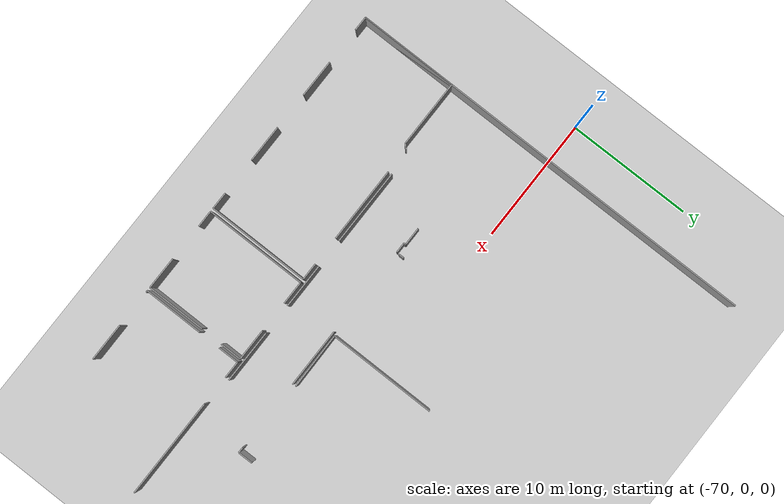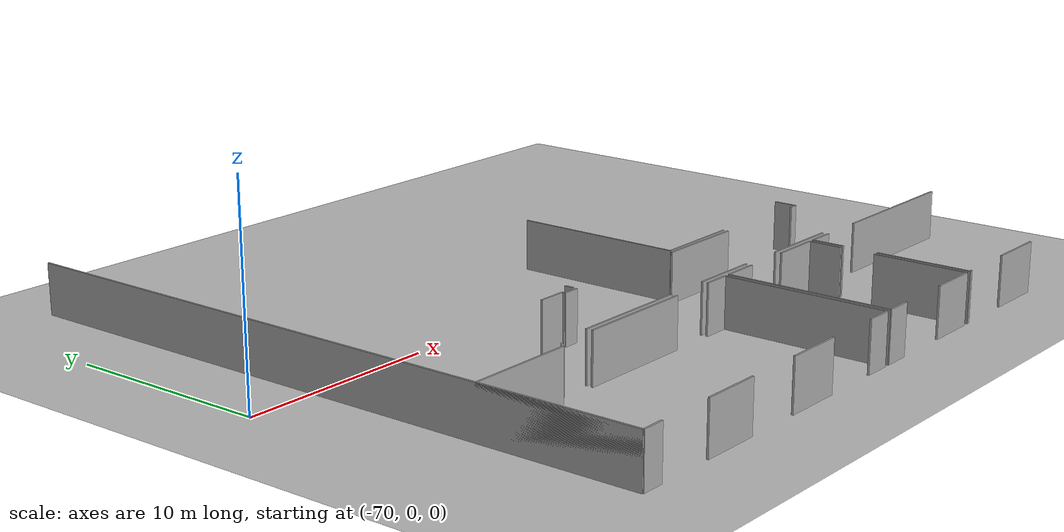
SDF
<sdf version="1.6">
 <world name="default">
  <model name="ground_plane">
   <static>1</static>
   <link name="link">
    <collision name="collision">
     <geometry><plane><normal>0 0 1</normal><size>100 100</size></plane></geometry>
     <surface><friction><ode><mu>100</mu><mu2>50</mu2></ode></friction></surface>
    </collision>
    <visual name="visual">
     <cast_shadows>0</cast_shadows>
     <geometry><plane><normal>0 0 1</normal><size>100 100</size></plane></geometry>
     <material>
      <script><uri>file://media/materials/scripts/gazebo.material</uri><name>Gazebo/Grey</name></script>
     </material>
    </visual>
   </link>
  </model>
  <model name="50041174">
   <static>1</static>
   <link name="Wall_0">
    <collision name="Wall_0_Collision">
     <geometry><box><size>7.88588474232 0.1 2.5</size></box></geometry>
     <pose>3.94294237116 0 1.25 0 0 0</pose>
    </collision>
    <visual name="Wall_0_Visual">
     <pose>3.94294237116 0 1.25 0 0 0</pose>
     <geometry><box><size>7.88588474232 0.1 2.5</size></box></geometry>
     <material>
      <script><uri>file://media/materials/scripts/gazebo.material</uri><name>Gazebo/Grey</name></script>
      <ambient>1 1 1 1</ambient>
     </material>
    </visual>
    <pose>0.0 -33.5118050267 0 0 0 1.57079632679</pose>
   </link>
   <link name="Wall_1">
    <collision name="Wall_1_Collision">
     <geometry><box><size>5.38448844884 0.1 2.5</size></box></geometry>
     <pose>2.69224422442 0 1.25 0 0 0</pose>
    </collision>
    <visual name="Wall_1_Visual">
     <pose>2.69224422442 0 1.25 0 0 0</pose>
     <geometry><box><size>5.38448844884 0.1 2.5</size></box></geometry>
     <material>
      <script><uri>file://media/materials/scripts/gazebo.material</uri><name>Gazebo/Grey</name></script>
      <ambient>1 1 1 1</ambient>
     </material>
    </visual>
    <pose>0.0 -25.6259202843 0 0 0 0.0</pose>
   </link>
   <link name="Wall_2">
    <collision name="Wall_2_Collision">
     <geometry><box><size>0.440170828321 0.1 2.5</size></box></geometry>
     <pose>0.22008541416 0 1.25 0 0 0</pose>
    </collision>
    <visual name="Wall_2_Visual">
     <pose>0.22008541416 0 1.25 0 0 0</pose>
     <geometry><box><size>0.440170828321 0.1 2.5</size></box></geometry>
     <material>
      <script><uri>file://media/materials/scripts/gazebo.material</uri><name>Gazebo/Grey</name></script>
      <ambient>1 1 1 1</ambient>
     </material>
    </visual>
    <pose>5.38448844884 -25.6259202843 0 0 0 0.78825296804</pose>
   </link>
   <link name="Wall_3">
    <collision name="Wall_3_Collision">
     <geometry><box><size>6.0684183803 0.1 2.5</size></box></geometry>
     <pose>3.03420919015 0 1.25 0 0 0</pose>
    </collision>
    <visual name="Wall_3_Visual">
     <pose>3.03420919015 0 1.25 0 0 0</pose>
     <geometry><box><size>6.0684183803 0.1 2.5</size></box></geometry>
     <material>
      <script><uri>file://media/materials/scripts/gazebo.material</uri><name>Gazebo/Grey</name></script>
      <ambient>1 1 1 1</ambient>
     </material>
    </visual>
    <pose>7.72480324956 -25.3137852247 0 0 0 0.0</pose>
   </link>
   <link name="Wall_4">
    <collision name="Wall_4_Collision">
     <geometry><box><size>1.3808073115 0.1 2.5</size></box></geometry>
     <pose>0.69040365575 0 1.25 0 0 0</pose>
    </collision>
    <visual name="Wall_4_Visual">
     <pose>0.69040365575 0 1.25 0 0 0</pose>
     <geometry><box><size>1.3808073115 0.1 2.5</size></box></geometry>
     <material>
      <script><uri>file://media/materials/scripts/gazebo.material</uri><name>Gazebo/Grey</name></script>
      <ambient>1 1 1 1</ambient>
     </material>
    </visual>
    <pose>16.141025641 -25.3137852247 0 0 0 0.0</pose>
   </link>
   <link name="Wall_5">
    <collision name="Wall_5_Collision">
     <geometry><box><size>8.19789286621 0.1 2.5</size></box></geometry>
     <pose>4.0989464331 0 1.25 0 0 0</pose>
    </collision>
    <visual name="Wall_5_Visual">
     <pose>4.0989464331 0 1.25 0 0 0</pose>
     <geometry><box><size>8.19789286621 0.1 2.5</size></box></geometry>
     <material>
      <script><uri>file://media/materials/scripts/gazebo.material</uri><name>Gazebo/Grey</name></script>
      <ambient>1 1 1 1</ambient>
     </material>
    </visual>
    <pose>17.5218329525 -25.3137852247 0 0 0 -1.57079632679</pose>
   </link>
   <link name="Wall_6">
    <collision name="Wall_6_Collision">
     <geometry><box><size>1.37928408225 0.1 2.5</size></box></geometry>
     <pose>0.689642041127 0 1.25 0 0 0</pose>
    </collision>
    <visual name="Wall_6_Visual">
     <pose>0.689642041127 0 1.25 0 0 0</pose>
     <geometry><box><size>1.37928408225 0.1 2.5</size></box></geometry>
     <material>
      <script><uri>file://media/materials/scripts/gazebo.material</uri><name>Gazebo/Grey</name></script>
      <ambient>1 1 1 1</ambient>
     </material>
    </visual>
    <pose>17.5218329525 -33.5116780909 0 0 0 3.14159265359</pose>
   </link>
   <link name="Wall_7">
    <collision name="Wall_7_Collision">
     <geometry><box><size>2.99162223915 0.1 2.5</size></box></geometry>
     <pose>1.49581111957 0 1.25 0 0 0</pose>
    </collision>
    <visual name="Wall_7_Visual">
     <pose>1.49581111957 0 1.25 0 0 0</pose>
     <geometry><box><size>2.99162223915 0.1 2.5</size></box></geometry>
     <material>
      <script><uri>file://media/materials/scripts/gazebo.material</uri><name>Gazebo/Grey</name></script>
      <ambient>1 1 1 1</ambient>
     </material>
    </visual>
    <pose>13.1335364306 -33.5116780909 0 0 0 3.14159265359</pose>
   </link>
   <link name="Wall_8">
    <collision name="Wall_8_Collision">
     <geometry><box><size>3.02665651181 0.1 2.5</size></box></geometry>
     <pose>1.5133282559 0 1.25 0 0 0</pose>
    </collision>
    <visual name="Wall_8_Visual">
     <pose>1.5133282559 0 1.25 0 0 0</pose>
     <geometry><box><size>3.02665651181 0.1 2.5</size></box></geometry>
     <material>
      <script><uri>file://media/materials/scripts/gazebo.material</uri><name>Gazebo/Grey</name></script>
      <ambient>1 1 1 1</ambient>
     </material>
    </visual>
    <pose>7.16666666667 -33.5116780909 0 0 0 3.14159265359</pose>
   </link>
   <link name="Wall_9">
    <collision name="Wall_9_Collision">
     <geometry><box><size>1.14534146426 0.1 2.5</size></box></geometry>
     <pose>0.572670732128 0 1.25 0 0 0</pose>
    </collision>
    <visual name="Wall_9_Visual">
     <pose>0.572670732128 0 1.25 0 0 0</pose>
     <geometry><box><size>1.14534146426 0.1 2.5</size></box></geometry>
     <material>
      <script><uri>file://media/materials/scripts/gazebo.material</uri><name>Gazebo/Grey</name></script>
      <ambient>1 1 1 1</ambient>
     </material>
    </visual>
    <pose>1.14534145722 -33.5116780909 0 0 0 -3.14148182571</pose>
   </link>
   <link name="Wall_10">
    <collision name="Wall_10_Collision">
     <geometry><box><size>8.20614369129 0.1 2.5</size></box></geometry>
     <pose>4.10307184565 0 1.25 0 0 0</pose>
    </collision>
    <visual name="Wall_10_Visual">
     <pose>4.10307184565 0 1.25 0 0 0</pose>
     <geometry><box><size>8.20614369129 0.1 2.5</size></box></geometry>
     <material>
      <script><uri>file://media/materials/scripts/gazebo.material</uri><name>Gazebo/Grey</name></script>
      <ambient>1 1 1 1</ambient>
     </material>
    </visual>
    <pose>17.8136582889 -33.5176440721 0 0 0 1.57079632679</pose>
   </link>
   <link name="Wall_11">
    <collision name="Wall_11_Collision">
     <geometry><box><size>1.86773292714 0.1 2.5</size></box></geometry>
     <pose>0.933866463569 0 1.25 0 0 0</pose>
    </collision>
    <visual name="Wall_11_Visual">
     <pose>0.933866463569 0 1.25 0 0 0</pose>
     <geometry><box><size>1.86773292714 0.1 2.5</size></box></geometry>
     <material>
      <script><uri>file://media/materials/scripts/gazebo.material</uri><name>Gazebo/Grey</name></script>
      <ambient>1 1 1 1</ambient>
     </material>
    </visual>
    <pose>17.8136582889 -25.3115003808 0 0 0 0.0</pose>
   </link>
   <link name="Wall_12">
    <collision name="Wall_12_Collision">
     <geometry><box><size>2.53681137345 0.1 2.5</size></box></geometry>
     <pose>1.26840568672 0 1.25 0 0 0</pose>
    </collision>
    <visual name="Wall_12_Visual">
     <pose>1.26840568672 0 1.25 0 0 0</pose>
     <geometry><box><size>2.53681137345 0.1 2.5</size></box></geometry>
     <material>
      <script><uri>file://media/materials/scripts/gazebo.material</uri><name>Gazebo/Grey</name></script>
      <ambient>1 1 1 1</ambient>
     </material>
    </visual>
    <pose>22.1799949226 -25.3115003808 0 0 0 0.0</pose>
   </link>
   <link name="Wall_13">
    <collision name="Wall_13_Collision">
     <geometry><box><size>1.69941609546 0.1 2.5</size></box></geometry>
     <pose>0.849708047728 0 1.25 0 0 0</pose>
    </collision>
    <visual name="Wall_13_Visual">
     <pose>0.849708047728 0 1.25 0 0 0</pose>
     <geometry><box><size>1.69941609546 0.1 2.5</size></box></geometry>
     <material>
      <script><uri>file://media/materials/scripts/gazebo.material</uri><name>Gazebo/Grey</name></script>
      <ambient>1 1 1 1</ambient>
     </material>
    </visual>
    <pose>24.716806296 -25.3115003808 0 0 0 -1.57079632679</pose>
   </link>
   <link name="Wall_14">
    <collision name="Wall_14_Collision">
     <geometry><box><size>4.73635440467 0.1 2.5</size></box></geometry>
     <pose>2.36817720234 0 1.25 0 0 0</pose>
    </collision>
    <visual name="Wall_14_Visual">
     <pose>2.36817720234 0 1.25 0 0 0</pose>
     <geometry><box><size>4.73635440467 0.1 2.5</size></box></geometry>
     <material>
      <script><uri>file://media/materials/scripts/gazebo.material</uri><name>Gazebo/Grey</name></script>
      <ambient>1 1 1 1</ambient>
     </material>
    </visual>
    <pose>24.716806296 -28.7764661081 0 0 0 -1.57079632679</pose>
   </link>
   <link name="Wall_15">
    <collision name="Wall_15_Collision">
     <geometry><box><size>2.5817466362 0.1 2.5</size></box></geometry>
     <pose>1.2908733181 0 1.25 0 0 0</pose>
    </collision>
    <visual name="Wall_15_Visual">
     <pose>1.2908733181 0 1.25 0 0 0</pose>
     <geometry><box><size>2.5817466362 0.1 2.5</size></box></geometry>
     <material>
      <script><uri>file://media/materials/scripts/gazebo.material</uri><name>Gazebo/Grey</name></script>
      <ambient>1 1 1 1</ambient>
     </material>
    </visual>
    <pose>24.716806296 -33.5128205128 0 0 0 3.14159265359</pose>
   </link>
   <link name="Wall_16">
    <collision name="Wall_16_Collision">
     <geometry><box><size>1.34933586199 0.1 2.5</size></box></geometry>
     <pose>0.674667930995 0 1.25 0 0 0</pose>
    </collision>
    <visual name="Wall_16_Visual">
     <pose>0.674667930995 0 1.25 0 0 0</pose>
     <geometry><box><size>1.34933586199 0.1 2.5</size></box></geometry>
     <material>
      <script><uri>file://media/materials/scripts/gazebo.material</uri><name>Gazebo/Grey</name></script>
      <ambient>1 1 1 1</ambient>
     </material>
    </visual>
    <pose>19.1629855293 -33.5128205128 0 0 0 -3.13801788048</pose>
   </link>
   <link name="Wall_17">
    <collision name="Wall_17_Collision">
     <geometry><box><size>4.76364559533 0.1 2.5</size></box></geometry>
     <pose>2.38182279766 0 1.25 0 0 0</pose>
    </collision>
    <visual name="Wall_17_Visual">
     <pose>2.38182279766 0 1.25 0 0 0</pose>
     <geometry><box><size>4.76364559533 0.1 2.5</size></box></geometry>
     <material>
      <script><uri>file://media/materials/scripts/gazebo.material</uri><name>Gazebo/Grey</name></script>
      <ambient>1 1 1 1</ambient>
     </material>
    </visual>
    <pose>25.0048235593 -33.5223406956 0 0 0 1.57079632679</pose>
   </link>
   <link name="Wall_18">
    <collision name="Wall_18_Collision">
     <geometry><box><size>1.65486164001 0.1 2.5</size></box></geometry>
     <pose>0.827430820005 0 1.25 0 0 0</pose>
    </collision>
    <visual name="Wall_18_Visual">
     <pose>0.827430820005 0 1.25 0 0 0</pose>
     <geometry><box><size>1.65486164001 0.1 2.5</size></box></geometry>
     <material>
      <script><uri>file://media/materials/scripts/gazebo.material</uri><name>Gazebo/Grey</name></script>
      <ambient>1 1 1 1</ambient>
     </material>
    </visual>
    <pose>25.0048235593 -26.96458492 0 0 0 1.57079632679</pose>
   </link>
   <link name="Wall_19">
    <collision name="Wall_19_Collision">
     <geometry><box><size>1.37585681645 0.1 2.5</size></box></geometry>
     <pose>0.687928408225 0 1.25 0 0 0</pose>
    </collision>
    <visual name="Wall_19_Visual">
     <pose>0.687928408225 0 1.25 0 0 0</pose>
     <geometry><box><size>1.37585681645 0.1 2.5</size></box></geometry>
     <material>
      <script><uri>file://media/materials/scripts/gazebo.material</uri><name>Gazebo/Grey</name></script>
      <ambient>1 1 1 1</ambient>
     </material>
    </visual>
    <pose>25.0048235593 -25.30972328 0 0 0 0.0</pose>
   </link>
   <link name="Wall_20">
    <collision name="Wall_20_Collision">
     <geometry><box><size>7.94643310485 0.1 2.5</size></box></geometry>
     <pose>3.97321655242 0 1.25 0 0 0</pose>
    </collision>
    <visual name="Wall_20_Visual">
     <pose>3.97321655242 0 1.25 0 0 0</pose>
     <geometry><box><size>7.94643310485 0.1 2.5</size></box></geometry>
     <material>
      <script><uri>file://media/materials/scripts/gazebo.material</uri><name>Gazebo/Grey</name></script>
      <ambient>1 1 1 1</ambient>
     </material>
    </visual>
    <pose>28.7527291191 -25.30972328 0 0 0 0.0</pose>
   </link>
   <link name="Wall_23">
    <collision name="Wall_23_Collision">
     <geometry><box><size>3.02868748413 0.1 2.5</size></box></geometry>
     <pose>1.51434374207 0 1.25 0 0 0</pose>
    </collision>
    <visual name="Wall_23_Visual">
     <pose>1.51434374207 0 1.25 0 0 0</pose>
     <geometry><box><size>3.02868748413 0.1 2.5</size></box></geometry>
     <material>
      <script><uri>file://media/materials/scripts/gazebo.material</uri><name>Gazebo/Grey</name></script>
      <ambient>1 1 1 1</ambient>
     </material>
    </visual>
    <pose>31.1678090886 -33.5085046966 0 0 0 3.14159265359</pose>
   </link>
   <link name="Wall_24">
    <collision name="Wall_24_Collision">
     <geometry><box><size>0.150169093842 0.1 2.5</size></box></geometry>
     <pose>0.0750845469211 0 1.25 0 0 0</pose>
    </collision>
    <visual name="Wall_24_Visual">
     <pose>0.0750845469211 0 1.25 0 0 0</pose>
     <geometry><box><size>0.150169093842 0.1 2.5</size></box></geometry>
     <material>
      <script><uri>file://media/materials/scripts/gazebo.material</uri><name>Gazebo/Grey</name></script>
      <ambient>1 1 1 1</ambient>
     </material>
    </visual>
    <pose>25.1543538969 -33.5085046966 0 0 0 -3.04932566591</pose>
   </link>
   <link name="Wall_101">
    <collision name="Wall_101_Collision">
     <geometry><box><size>4.2396547347 0.1 2.5</size></box></geometry>
     <pose>2.11982736735 0 1.25 0 0 0</pose>
    </collision>
    <visual name="Wall_101_Visual">
     <pose>2.11982736735 0 1.25 0 0 0</pose>
     <geometry><box><size>4.2396547347 0.1 2.5</size></box></geometry>
     <material>
      <script><uri>file://media/materials/scripts/gazebo.material</uri><name>Gazebo/Grey</name></script>
      <ambient>1 1 1 1</ambient>
     </material>
    </visual>
    <pose>26.3707793856 -25.0140898705 0 0 0 3.14159265359</pose>
   </link>
   <link name="Wall_102">
    <collision name="Wall_102_Collision">
     <geometry><box><size>3.55064737243 0.1 2.5</size></box></geometry>
     <pose>1.77532368621 0 1.25 0 0 0</pose>
    </collision>
    <visual name="Wall_102_Visual">
     <pose>1.77532368621 0 1.25 0 0 0</pose>
     <geometry><box><size>3.55064737243 0.1 2.5</size></box></geometry>
     <material>
      <script><uri>file://media/materials/scripts/gazebo.material</uri><name>Gazebo/Grey</name></script>
      <ambient>1 1 1 1</ambient>
     </material>
    </visual>
    <pose>19.6775831429 -25.0140898705 0 0 0 3.14159265359</pose>
   </link>
   <link name="Wall_103">
    <collision name="Wall_103_Collision">
     <geometry><box><size>6.07019548109 0.1 2.5</size></box></geometry>
     <pose>3.03509774054 0 1.25 0 0 0</pose>
    </collision>
    <visual name="Wall_103_Visual">
     <pose>3.03509774054 0 1.25 0 0 0</pose>
     <geometry><box><size>6.07019548109 0.1 2.5</size></box></geometry>
     <material>
      <script><uri>file://media/materials/scripts/gazebo.material</uri><name>Gazebo/Grey</name></script>
      <ambient>1 1 1 1</ambient>
     </material>
    </visual>
    <pose>13.7840822544 -25.0140898705 0 0 0 3.14159265359</pose>
   </link>
   <link name="Wall_104">
    <collision name="Wall_104_Collision">
     <geometry><box><size>1.44427519675 0.1 2.5</size></box></geometry>
     <pose>0.722137598375 0 1.25 0 0 0</pose>
    </collision>
    <visual name="Wall_104_Visual">
     <pose>0.722137598375 0 1.25 0 0 0</pose>
     <geometry><box><size>1.44427519675 0.1 2.5</size></box></geometry>
     <material>
      <script><uri>file://media/materials/scripts/gazebo.material</uri><name>Gazebo/Grey</name></script>
      <ambient>1 1 1 1</ambient>
     </material>
    </visual>
    <pose>9.62147753237 -21.1242701193 0 0 0 0.0</pose>
   </link>
   <link name="Wall_105">
    <collision name="Wall_105_Collision">
     <geometry><box><size>0.150545823813 0.1 2.5</size></box></geometry>
     <pose>0.0752729119066 0 1.25 0 0 0</pose>
    </collision>
    <visual name="Wall_105_Visual">
     <pose>0.0752729119066 0 1.25 0 0 0</pose>
     <geometry><box><size>0.150545823813 0.1 2.5</size></box></geometry>
     <material>
      <script><uri>file://media/materials/scripts/gazebo.material</uri><name>Gazebo/Grey</name></script>
      <ambient>1 1 1 1</ambient>
     </material>
    </visual>
    <pose>11.0657527291 -21.1242701193 0 0 0 -1.57079632679</pose>
   </link>
   <link name="Wall_106">
    <collision name="Wall_106_Collision">
     <geometry><box><size>0.825209444021 0.1 2.5</size></box></geometry>
     <pose>0.412604722011 0 1.25 0 0 0</pose>
    </collision>
    <visual name="Wall_106_Visual">
     <pose>0.412604722011 0 1.25 0 0 0</pose>
     <geometry><box><size>0.825209444021 0.1 2.5</size></box></geometry>
     <material>
      <script><uri>file://media/materials/scripts/gazebo.material</uri><name>Gazebo/Grey</name></script>
      <ambient>1 1 1 1</ambient>
     </material>
    </visual>
    <pose>11.0657527291 -21.2748159431 0 0 0 0.0</pose>
   </link>
   <link name="Wall_107">
    <collision name="Wall_107_Collision">
     <geometry><box><size>4.7030972328 0.1 2.5</size></box></geometry>
     <pose>2.3515486164 0 1.25 0 0 0</pose>
    </collision>
    <visual name="Wall_107_Visual">
     <pose>2.3515486164 0 1.25 0 0 0</pose>
     <geometry><box><size>4.7030972328 0.1 2.5</size></box></geometry>
     <material>
      <script><uri>file://media/materials/scripts/gazebo.material</uri><name>Gazebo/Grey</name></script>
      <ambient>1 1 1 1</ambient>
     </material>
    </visual>
    <pose>19.106752983 -21.2748159431 0 0 0 0.0</pose>
   </link>
   <link name="Wall_108">
    <collision name="Wall_108_Collision">
     <geometry><box><size>0.427392739274 0.1 2.5</size></box></geometry>
     <pose>0.213696369637 0 1.25 0 0 0</pose>
    </collision>
    <visual name="Wall_108_Visual">
     <pose>0.213696369637 0 1.25 0 0 0</pose>
     <geometry><box><size>0.427392739274 0.1 2.5</size></box></geometry>
     <material>
      <script><uri>file://media/materials/scripts/gazebo.material</uri><name>Gazebo/Grey</name></script>
      <ambient>1 1 1 1</ambient>
     </material>
    </visual>
    <pose>29.4912414318 -21.2748159431 0 0 0 0.0</pose>
   </link>
   <link name="Wall_128">
    <collision name="Wall_128_Collision">
     <geometry><box><size>0.4315816197 0.1 2.5</size></box></geometry>
     <pose>0.21579080985 0 1.25 0 0 0</pose>
    </collision>
    <visual name="Wall_128_Visual">
     <pose>0.21579080985 0 1.25 0 0 0</pose>
     <geometry><box><size>0.4315816197 0.1 2.5</size></box></geometry>
     <material>
      <script><uri>file://media/materials/scripts/gazebo.material</uri><name>Gazebo/Grey</name></script>
      <ambient>1 1 1 1</ambient>
     </material>
    </visual>
    <pose>11.9067022087 -21.0708301599 0 0 0 1.57079632679</pose>
   </link>
   <link name="Wall_130">
    <collision name="Wall_130_Collision">
     <geometry><box><size>8.59202843361 0.1 2.5</size></box></geometry>
     <pose>4.29601421681 0 1.25 0 0 0</pose>
    </collision>
    <visual name="Wall_130_Visual">
     <pose>4.29601421681 0 1.25 0 0 0</pose>
     <geometry><box><size>8.59202843361 0.1 2.5</size></box></geometry>
     <material>
      <script><uri>file://media/materials/scripts/gazebo.material</uri><name>Gazebo/Grey</name></script>
      <ambient>1 1 1 1</ambient>
     </material>
    </visual>
    <pose>19.3012185834 -21.0687991876 0 0 0 1.57079632679</pose>
   </link>
   <link name="Wall_134">
    <collision name="Wall_134_Collision">
     <geometry><box><size>4.48679195906 0.1 2.5</size></box></geometry>
     <pose>2.24339597953 0 1.25 0 0 0</pose>
    </collision>
    <visual name="Wall_134_Visual">
     <pose>2.24339597953 0 1.25 0 0 0</pose>
     <geometry><box><size>4.48679195906 0.1 2.5</size></box></geometry>
     <material>
      <script><uri>file://media/materials/scripts/gazebo.material</uri><name>Gazebo/Grey</name></script>
      <ambient>1 1 1 1</ambient>
     </material>
    </visual>
    <pose>23.7877633917 -21.0217060168 0 0 0 -3.13109650489</pose>
   </link>
   <link name="Wall_141">
    <collision name="Wall_141_Collision">
     <geometry><box><size>1.13648408921 0.1 2.5</size></box></geometry>
     <pose>0.568242044605 0 1.25 0 0 0</pose>
    </collision>
    <visual name="Wall_141_Visual">
     <pose>0.568242044605 0 1.25 0 0 0</pose>
     <geometry><box><size>1.13648408921 0.1 2.5</size></box></geometry>
     <material>
      <script><uri>file://media/materials/scripts/gazebo.material</uri><name>Gazebo/Grey</name></script>
      <ambient>1 1 1 1</ambient>
     </material>
    </visual>
    <pose>29.928662097 -21.2303884235 0 0 0 1.57783295811</pose>
   </link>
   <link name="Wall_349">
    <collision name="Wall_349_Collision">
     <geometry><box><size>33.5304645849 0.1 2.5</size></box></geometry>
     <pose>16.7652322925 0 1.25 0 0 0</pose>
    </collision>
    <visual name="Wall_349_Visual">
     <pose>16.7652322925 0 1.25 0 0 0</pose>
     <geometry><box><size>33.5304645849 0.1 2.5</size></box></geometry>
     <material>
      <script><uri>file://media/materials/scripts/gazebo.material</uri><name>Gazebo/Grey</name></script>
      <ambient>1 1 1 1</ambient>
     </material>
    </visual>
    <pose>0.0 -33.5304645849 0 0 0 1.57079632679</pose>
   </link>
   <pose>-66.5 16.7804645849 0 0 0 0</pose>
  </model>
 </world>
</sdf>
